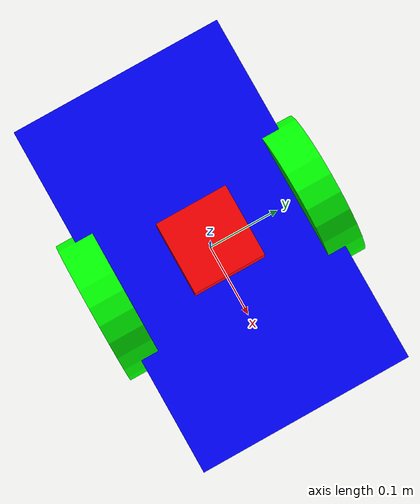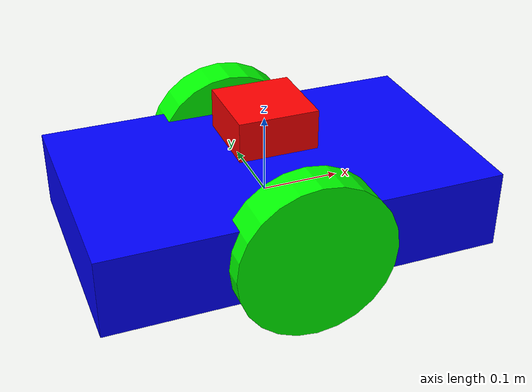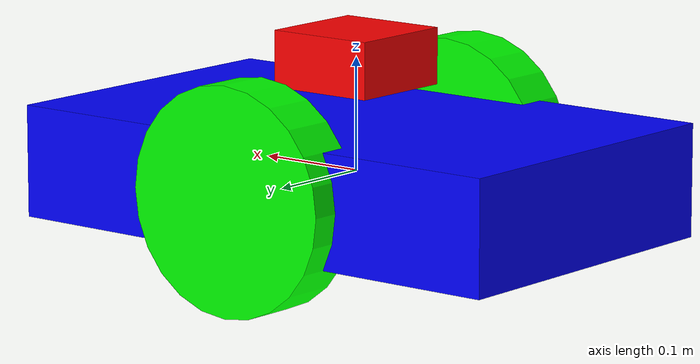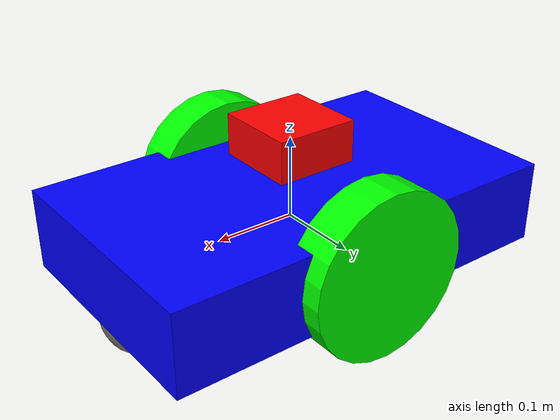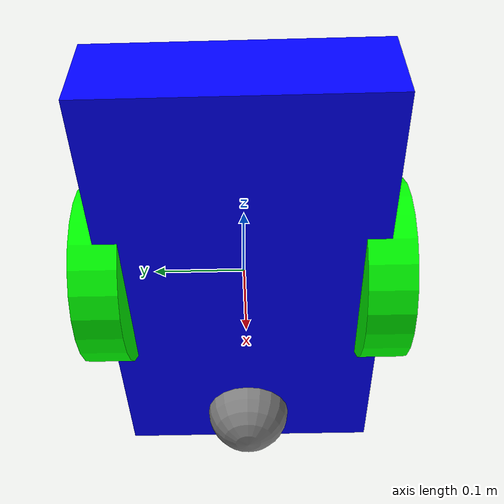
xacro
<?xml version="1.0"?>
<robot xmlns:xacro="http://www.ros.org/wiki/xacro" name="robot_model">

  <xacro:property name="base_length" value="0.5"/>
  <xacro:property name="base_width"  value="0.3"/>
  <xacro:property name="base_height" value="0.1"/>
  <xacro:property name="base_mass" value="10.0"/>

  <xacro:property name="wheel_radius" value="0.1"/>
  <xacro:property name="wheel_width"  value="0.05"/>
  <xacro:property name="wheel_mass" value="1.0"/>

  <xacro:property name="caster_radius" value="0.05"/>
  <xacro:property name="caster_mass" value="0.5"/>

  <xacro:property name="imu_mass" value="0.2"/>

  <link name="base_footprint"/>

  <link name="base_link">
    <visual>
      <geometry>
        <box size="${base_length} ${base_width} ${base_height}"/>
      </geometry>
      <material name="blue">
        <color rgba="0 0 1 1"/>
      </material>
    </visual>

    <collision>
      <geometry>
        <box size="${base_length} ${base_width} ${base_height}"/>
      </geometry>
    </collision>

    <inertial>
      <mass value="${base_mass}"/>
      <origin xyz="0 0 0" rpy="0 0 0"/>
      <inertia
        ixx="${(1/12)*base_mass*(base_width*base_width + base_height*base_height)}"
        iyy="${(1/12)*base_mass*(base_length*base_length + base_height*base_height)}"
        izz="${(1/12)*base_mass*(base_length*base_length + base_width*base_width)}"
        ixy="0" ixz="0" iyz="0"/>
    </inertial>
  </link>

  <joint name="base_footprint_to_base_link" type="fixed">
    <parent link="base_footprint"/>
    <child link="base_link"/>
  </joint>

  <xacro:macro name="wheel" params="name y_pos">
    <link name="${name}">
      <visual>
        <geometry>
          <cylinder radius="${wheel_radius}" length="${wheel_width}"/>
        </geometry>
        <material name="black">
          <color rgba="0 1 0 1"/>
        </material>
      </visual>

      <collision>
        <geometry>
          <cylinder radius="${wheel_radius}" length="${wheel_width}"/>
        </geometry>
      </collision>

      <inertial>
        <mass value="${wheel_mass}"/>
        <origin xyz="0 0 0" rpy="0 0 0"/>
        <inertia
          ixx="${(1/12)*wheel_mass*(3*wheel_radius*wheel_radius + wheel_width*wheel_width)}"
          iyy="${(1/12)*wheel_mass*(3*wheel_radius*wheel_radius + wheel_width*wheel_width)}"
          izz="${(1/2)*wheel_mass*wheel_radius*wheel_radius}"
          ixy="0" ixz="0" iyz="0"/>
      </inertial>
    </link>

    <joint name="base_to_${name}" type="fixed">
      <parent link="base_link"/>
      <child link="${name}"/>
      <origin xyz="0 ${y_pos} 0" rpy="-1.57 0 0"/>
    </joint>
  </xacro:macro>

  <xacro:wheel name="left_wheel"  y_pos="0.15"/>
  <xacro:wheel name="right_wheel" y_pos="-0.15"/>

  <link name="caster_wheel">
    <visual>
      <geometry>
        <sphere radius="${caster_radius}"/>
      </geometry>
      <material name="gray">
        <color rgba="0.5 0.5 0.5 1"/>
      </material>
    </visual>

    <collision>
      <geometry>
        <sphere radius="${caster_radius}"/>
      </geometry>
    </collision>

    <inertial>
      <mass value="${caster_mass}"/>
      <origin xyz="0 0 0" rpy="0 0 0"/>
      <inertia
        ixx="${(2/5)*caster_mass*caster_radius*caster_radius}"
        iyy="${(2/5)*caster_mass*caster_radius*caster_radius}"
        izz="${(2/5)*caster_mass*caster_radius*caster_radius}"
        ixy="0" ixz="0" iyz="0"/>
    </inertial>
  </link>

  <joint name="base_to_caster_wheel" type="fixed">
    <parent link="base_link"/>
    <child link="caster_wheel"/>
    <origin xyz="0.2 0 -0.05" rpy="0 0 0"/>
  </joint>

  <link name="imu_link1">
    <visual>
      <geometry>
        <box size="0.1 0.1 0.05"/>
      </geometry>
      <material name="red">
        <color rgba="1 0 0 1"/>
      </material>
    </visual>

    <collision>
      <geometry>
        <box size="0.1 0.1 0.05"/>
      </geometry>
    </collision>

    <inertial>
      <mass value="${imu_mass}"/>
      <origin xyz="0 0 0" rpy="0 0 0"/>
      <inertia
        ixx="${(1/12)*imu_mass*(0.1*0.1 + 0.05*0.05)}"
        iyy="${(1/12)*imu_mass*(0.1*0.1 + 0.05*0.05)}"
        izz="${(1/12)*imu_mass*(0.1*0.1 + 0.1*0.1)}"
        ixy="0" ixz="0" iyz="0"/>
    </inertial>
  </link>

  <joint name="base_to_imu_link1" type="fixed">
    <parent link="base_link"/>
    <child link="imu_link1"/>
    <origin xyz="0 0 0.1" rpy="0 0 0"/>
  </joint>

</robot>
